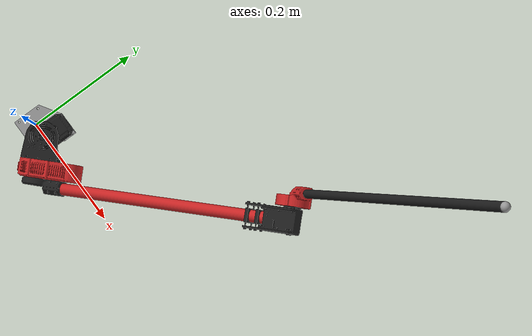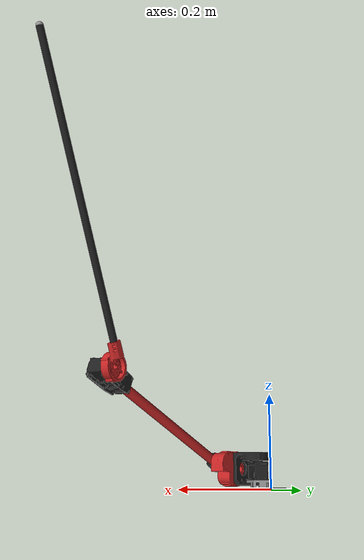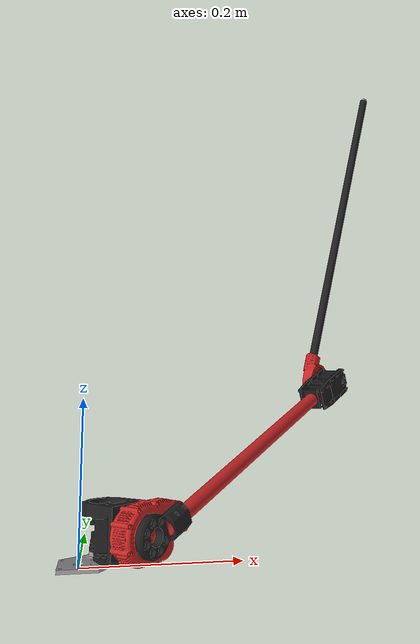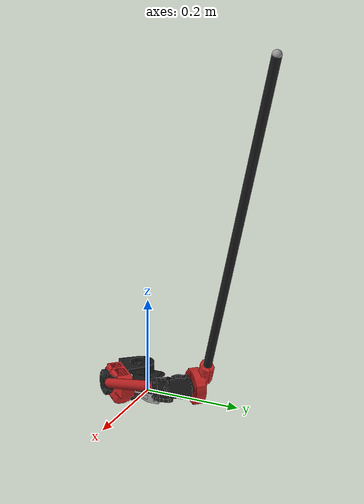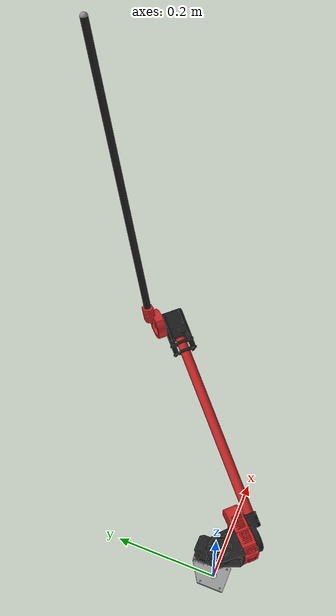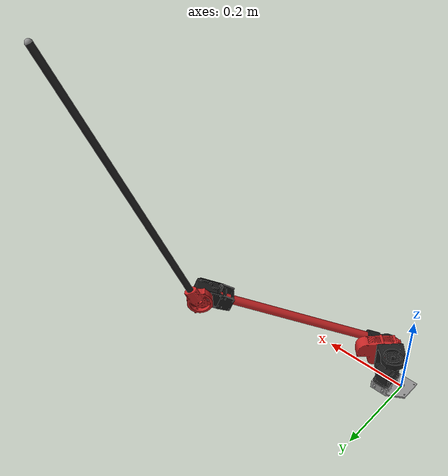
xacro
<?xml version="1.0"?>
<robot name="arm" xmlns:xacro="http://ros.org/wiki/xacro">

    <!-- Import all Gazebo-customization elements, including Gazebo colors -->
    <xacro:include filename="$(find mav_arm_force_controlled)/src/arm_gazebo_materials.gazebo" />

    <!-- Import Rviz colors -->
    <xacro:include filename="$(find mav_arm_force_controlled)/src/arm_rviz_materials.xacro" />

    <!-- General Variables-->
    <xacro:property name="pi" value="3.1415926535897931" />

    <!-- Mesh files of exact geometry-->
    <xacro:property name="mesh_file_baseplate" value="package://mav_arm_force_controlled/meshes/geometry_2.0/voliro_arm_base_dynamixel_balanced.stl" />
    <xacro:property name="mesh_file_dyamixel" value="package://mav_arm_force_controlled/meshes/geometry_2.0/voliro_arm_dynamixel.stl" />
    <xacro:property name="mesh_file_dyamixel_to_hebi" value="package://mav_arm_force_controlled/meshes/geometry_2.0/voliro_arm_dynamixel_to_hebi.stl" />
    <xacro:property name="mesh_file_hebi" value="package://mav_arm_force_controlled/meshes/geometry_2.0/voliro_arm_hebi.stl" />
    <xacro:property name="mesh_file_clamp2" value="package://mav_arm_force_controlled/meshes/geometry_2.0/voliro_arm_clamp2.stl" />
    <xacro:property name="mesh_file_tube2" value="package://mav_arm_force_controlled/meshes/geometry_2.0/voliro_arm_tube2.stl" />
    <xacro:property name="mesh_file_tube_adapter" value="package://mav_arm_force_controlled/meshes/geometry_2.0/voliro_arm_tube_adapter.stl" />
    <xacro:property name="mesh_file_actuator1" value="package://mav_arm_force_controlled/meshes/geometry_2.0/voliro_arm_dynamixel.stl" />
    <xacro:property name="mesh_file_clamp1" value="package://mav_arm_force_controlled/meshes/geometry_2.0/voliro_arm_clamp1.stl" />
    <xacro:property name="mesh_file_tube1" value="package://mav_arm_force_controlled/meshes/geometry_2.0/voliro_arm_tube1.stl" />
    <xacro:property name="mesh_file_tip" value="package://mav_arm_force_controlled/meshes/geometry_2.0/voliro_arm_tip.stl" />

    <!-- Mesh files of simplified geometry for collision checking-->
    <xacro:property name="s_mesh_file_baseplate" value="package://mav_arm_force_controlled/meshes/simplified_geometry_2.0/voliro_arm_base_dynamixel_balanced.stl" />
    <xacro:property name="s_mesh_file_dyamixel" value="package://mav_arm_force_controlled/meshes/simplified_geometry_2.0/voliro_arm_dynamixel.stl" />
    <xacro:property name="s_mesh_file_dyamixel_to_hebi" value="package://mav_arm_force_controlled/meshes/simplified_geometry_2.0/voliro_arm_dynamixel_to_hebi.stl" />
    <xacro:property name="s_mesh_file_hebi" value="package://mav_arm_force_controlled/meshes/simplified_geometry_2.0/voliro_arm_hebi.stl" />
    <xacro:property name="s_mesh_file_clamp2" value="package://mav_arm_force_controlled/meshes/simplified_geometry_2.0/voliro_arm_clamp2.stl" />
    <xacro:property name="s_mesh_file_tube2" value="package://mav_arm_force_controlled/meshes/simplified_geometry_2.0/voliro_arm_tube2.stl" />
    <xacro:property name="s_mesh_file_tube_adapter" value="package://mav_arm_force_controlled/meshes/simplified_geometry_2.0/voliro_arm_tube_adapter.stl" />
    <xacro:property name="s_mesh_file_actuator1" value="package://mav_arm_force_controlled/meshes/simplified_geometry_2.0/voliro_arm_dynamixel.stl" />
    <xacro:property name="s_mesh_file_clamp1" value="package://mav_arm_force_controlled/meshes/simplified_geometry_2.0/voliro_arm_clamp1.stl" />
    <xacro:property name="s_mesh_file_tube1" value="package://mav_arm_force_controlled/meshes/simplified_geometry_2.0/voliro_arm_tube1.stl" />
    <xacro:property name="s_mesh_file_tip" value="package://mav_arm_force_controlled/meshes/simplified_geometry_2.0/voliro_arm_tip.stl" />

    <!-- Mesh files are in mm. All mesh files are scaled by the factor 1000-->
    <xacro:property name="mesh_scale" value="0.001" />

    <!-- Unit conversion for inertia from kg*mm² to kg*m² -->
    <xacro:property name="uc_inertia" value="0.000001" />

    <!-- The mass and inertia elements are defined before the link element -->
    <xacro:property name="baseplate_mass" value="0.034534697" />

    <xacro:property name="baseplate_cog_x" value="-0.0155840153" />
    <xacro:property name="baseplate_cog_y" value="0.03245573125" />
    <xacro:property name="baseplate_cog_z" value="0.01488134446" />

    <xacro:property name="baseplate_ixx" value="${60.4589042*uc_inertia}" />
    <xacro:property name="baseplate_ixy" value="${0}" />
    <xacro:property name="baseplate_ixz" value="${0}" />
    <xacro:property name="baseplate_iyy" value="${32.25701807*uc_inertia}" />
    <xacro:property name="baseplate_iyz" value="${17.84460765*uc_inertia}" />
    <xacro:property name="baseplate_izz" value="${75.37700913*uc_inertia}" />

  <link name="world"/>

  <joint name="fixed" type="fixed">
    <parent link="world"/>
    <child link="baseplate"/>
    <origin xyz="0.03244 0.0481 0.02" rpy="${pi} 0 0" />
  </joint>

  <link name="baseplate">
    <visual>
      <geometry>
          <mesh filename="${mesh_file_baseplate}"
                scale="${mesh_scale} ${mesh_scale} ${mesh_scale}"/>
        </geometry>
      <origin rpy="0 0 0" xyz="0 0 0"/>
    </visual>
    <collision>
      <geometry>
        <mesh filename="${s_mesh_file_baseplate}"
              scale="${mesh_scale} ${mesh_scale} ${mesh_scale}"/>
        </geometry>
      <origin rpy="0 0 0" xyz="0 0 0"/>
    </collision>
    <inertial>
      <mass value="${baseplate_mass}"/>
      <inertia ixx="${baseplate_ixx}" ixy="${baseplate_ixy}" ixz="${baseplate_ixz}" iyy="${baseplate_iyy}" iyz="${baseplate_iyz}" izz="${baseplate_izz}" />
    </inertial>
  </link>

  <joint name="baseplate_to_actuator3" type="fixed">
    <parent link="baseplate"/>
    <child link="actuator3"/>
    <origin rpy="${pi} 0 ${pi}" xyz="0 ${0.0425+0.0056} -0.017"/>
  </joint>

  <xacro:property name="dynamixel_mass" value="0.135" />

  <xacro:property name="dynamixel_cog_x" value="0.000000008" />
  <xacro:property name="dynamixel_cog_y" value="0.01519089" />
  <xacro:property name="dynamixel_cog_z" value="0.000362847" />

  <xacro:property name="dynamixel_ixx" value="0.000129338" />
  <xacro:property name="dynamixel_ixy" value="0" />
  <xacro:property name="dynamixel_ixz" value="0" />
  <xacro:property name="dynamixel_iyy" value="0.000047045" />
  <xacro:property name="dynamixel_iyz" value="0.0000014" />
  <xacro:property name="dynamixel_izz" value="0.000115625" />

  <link name="actuator3">
    <visual>
      <geometry>
          <mesh filename="${mesh_file_dyamixel}"
                scale="${mesh_scale} ${mesh_scale} ${mesh_scale}"/>
        </geometry>
        <origin rpy="0 0 0" xyz="0 0 0"/>
        <material name="black"/>
    </visual>
    <collision>
      <geometry>s
        <mesh filename="${s_mesh_file_dyamixel}"
              scale="${mesh_scale} ${mesh_scale} ${mesh_scale}"/>
        </geometry>
      <origin rpy="0 0 0" xyz="0 0 0"/>
    </collision>
    <inertial>
      <mass value="${dynamixel_mass}"/>
      <inertia ixx="${dynamixel_ixy}" ixy="${dynamixel_ixy}" ixz="${dynamixel_ixz}" iyy="${dynamixel_iyy}" iyz="${dynamixel_iyz}" izz="${dynamixel_izz}" />
    </inertial>
  </link>

  <joint name="actuator_to_hebi" type="revolute">
    <axis rpy="0 0 0" xyz="0 0 1"/>
    <parent link="actuator3"/>
    <child link="dynamixel_to_hebi"/>
    <origin rpy="0 0 ${pi/2+pi/4}" xyz="0 0 ${0.0235+0.012}"/>
    <limit effort="5" lower="${-3*pi/4}" upper="${pi/4}" velocity="1" />
  </joint>

  <transmission name="actuator3_dynamixel_trans">
    <type>transmission_interface/SimpleTransmission</type>
    <joint name="actuator_to_hebi">
      <hardwareInterface>hardware_interface/EffortJointInterface</hardwareInterface>
    </joint>
    <actuator name="actuator3_dynamixel_motor">
      <hardwareInterface>hardware_interface/EffortJointInterface</hardwareInterface>
      <mechanicalReduction>1</mechanicalReduction>
    </actuator>
  </transmission>

  <xacro:property name="bearing_mass" value="0.123" />

  <xacro:property name="bearing_cog_x" value="0.008737243596" />
  <xacro:property name="bearing_cog_y" value="0.00095854858" />
  <xacro:property name="bearing_cog_z" value="-0.01965454186" />

  <xacro:property name="bearing_ixx" value="${139.5553029*uc_inertia}" />
  <xacro:property name="bearing_ixy" value="${0.414376963*uc_inertia}" />
  <xacro:property name="bearing_ixz" value="${0}" />
  <xacro:property name="bearing_iyy" value="${162.416508*uc_inertia}" />
  <xacro:property name="bearing_iyz" value="${0}" />
  <xacro:property name="bearing_izz" value="${80.76641832*uc_inertia}" />

  <link name="dynamixel_to_hebi">
    <visual>
      <geometry>
        <mesh filename="${mesh_file_dyamixel_to_hebi}"
              scale="${mesh_scale} ${mesh_scale} ${mesh_scale}"/>
      </geometry>
      <origin rpy="0 0 0" xyz="0 0 0"/>
      <material name="black"/>
    </visual>
    <collision>
      <geometry>
        <mesh filename="${s_mesh_file_dyamixel_to_hebi}"
              scale="${mesh_scale} ${mesh_scale} ${mesh_scale}"/>
        </geometry>
      <origin rpy="0 0 0" xyz="0 0 0"/>
    </collision>
    <inertial>
      <mass value="${bearing_mass}"/>
      <inertia ixx="${bearing_ixx}" ixy="${bearing_ixy}" ixz="${bearing_ixz}" iyy="${bearing_iyy}" iyz="${bearing_iyz}" izz="${bearing_izz}" />
    </inertial>
  </link>

  <joint name="bearing_to_actuator2" type="fixed">
    <parent link="dynamixel_to_hebi"/>
    <child link="actuator2"/>
    <origin rpy="${pi/2} ${0} ${pi/2}"  xyz="${0.038+0.015} ${0} ${-0.029}"/>
  </joint>

  <xacro:property name="actuator2_mass" value="0.34" />

  <xacro:property name="actuator2_cog_x" value="0.000000171" />
  <xacro:property name="actuator2_cog_y" value="0.000278026" />
  <xacro:property name="actuator2_cog_z" value="0.038471524" />

  <xacro:property name="actuator2_ixx" value="0.000186786" />
  <xacro:property name="actuator2_ixy" value="0.000041556" />
  <xacro:property name="actuator2_ixz" value="0.000000273" />
  <xacro:property name="actuator2_iyy" value="0.00043422" />
  <xacro:property name="actuator2_iyz" value="0.00000029" />
  <xacro:property name="actuator2_izz" value="0.000554524" />

  <link name="actuator2">
    <visual>
      <geometry>
        <mesh filename="${mesh_file_hebi}"
              scale="${mesh_scale} ${mesh_scale} ${mesh_scale}"/>
      </geometry>
      <origin rpy="0 0 0" xyz="0 0 0"/>
      <material name="red"/>
    </visual>
    <collision>
      <geometry>
        <mesh filename="${s_mesh_file_hebi}"
              scale="${mesh_scale} ${mesh_scale} ${mesh_scale}"/>
        </geometry>
      <origin rpy="0 0 0" xyz="0 0 0"/>
    </collision>
    <inertial>
      <mass value="${actuator2_mass}"/>
      <inertia ixx="${actuator2_ixx}" ixy="${actuator2_ixy}" ixz="${actuator2_ixz}" iyy="${actuator2_iyy}" iyz="${actuator2_iyz}" izz="${actuator2_izz}" />
    </inertial>
  </link>

  <joint name="actuator2_to_clamp2" type="continuous">
    <axis rpy="0 0 0" xyz="0 -1 0"/>
    <parent link="actuator2"/>
    <child link="clamp2"/>
    <origin rpy="${pi/2} ${0} ${-pi/4-pi/8}" xyz="${0} ${0} ${0.01605}"/>
    <limit effort="5" velocity="1" />
  </joint>

  <transmission name="actuator2_hebi_trans">
    <type>transmission_interface/SimpleTransmission</type>
    <actuator name="$actuator2_hebi_motor">
      <mechanicalReduction>1</mechanicalReduction>
    </actuator>
    <joint name="actuator2_to_clamp2">
      <hardwareInterface>hardware_interface/EffortJointInterface</hardwareInterface>
    </joint>
  </transmission>

  <xacro:property name="clamp2_mass" value="0.029" />

  <xacro:property name="clamp2_cog_x" value="0.00000000019" />
  <xacro:property name="clamp2_cog_y" value="0.008.118243555" />
  <xacro:property name="clamp2_cog_z" value="-0.01350332735" />

  <xacro:property name="clamp2_ixx" value="${21.61924342*uc_inertia}" />
  <xacro:property name="clamp2_ixy" value="${0}" />
  <xacro:property name="clamp2_ixz" value="${0.000000228*uc_inertia}" />
  <xacro:property name="clamp2_iyy" value="${23.46303475*uc_inertia}" />
  <xacro:property name="clamp2_iyz" value="${0}" />
  <xacro:property name="clamp2_izz" value="${7.990509672*uc_inertia}" />

  <link name="clamp2">
    <visual>
      <geometry>
        <mesh filename="${mesh_file_clamp2}"
              scale="${mesh_scale} ${mesh_scale} ${mesh_scale}"/>
      </geometry>
      <origin rpy="0 0 0" xyz="0 0 0"/>
      <material name="black"/>
    </visual>
    <collision>
      <geometry>
        <mesh filename="${s_mesh_file_clamp2}"
              scale="${mesh_scale} ${mesh_scale} ${mesh_scale}"/>
        </geometry>
      <origin rpy="0 0 0" xyz="0 0 0"/>
    </collision>
    <inertial>
      <mass value="${clamp2_mass}"/>
      <inertia ixx="${clamp2_ixx}" ixy="${clamp2_ixy}" ixz="${clamp2_ixz}" iyy="${clamp2_iyy}" iyz="${clamp2_iyz}" izz="${clamp2_izz}" />
    </inertial>
  </link>

  <joint name="clamp2_to_tube2" type="fixed">
    <parent link="clamp2"/>
    <child link="tube2"/>
    <origin rpy="0 ${pi} 0" xyz="${0} ${0.012} ${-0.02}"/>
  </joint>

  <xacro:property name="tube2_mass" value="0.038201767" />

  <xacro:property name="tube2_cog_x" value="0" />
  <xacro:property name="tube2_cog_y" value="0" />
  <xacro:property name="tube2_cog_z" value="0.2" />

  <xacro:property name="tube2_ixx" value="0.002039156" />
  <xacro:property name="tube2_ixy" value="0" />
  <xacro:property name="tube2_ixz" value="0" />
  <xacro:property name="tube2_iyy" value="0.002039156" />
  <xacro:property name="tube2_iyz" value="0" />
  <xacro:property name="tube2_izz" value="0.000003457" />

  <link name="tube2">
    <visual>
      <geometry>
        <mesh filename="${mesh_file_tube2}"
              scale="${mesh_scale} ${mesh_scale} ${mesh_scale}"/>
      </geometry>
      <origin rpy="0 0 0" xyz="0 0 0"/>
      <material name="red"/>
    </visual>
    <collision>
      <geometry>
        <mesh filename="${s_mesh_file_tube2}"
              scale="${mesh_scale} ${mesh_scale} ${mesh_scale}"/>
        </geometry>
      <origin rpy="0 0 0" xyz="0 0 0"/>
    </collision>
    <inertial>
      <mass value="${tube2_mass}"/>
      <inertia ixx="${tube2_ixx}" ixy="${tube2_ixy}" ixz="${tube2_ixz}" iyy="${tube2_iyy}" iyz="${tube2_iyz}" izz="${tube2_izz}" />
    </inertial>
  </link>

    <joint name="tube2_to_adapter" type="fixed">
      <parent link="tube2"/>
      <child link="tube_adapter"/>
      <origin rpy="${pi/2} 0 ${-pi}" xyz="${0} ${-0.02} ${0.4-0.0056}"/>
    </joint>

    <xacro:property name="clamp2_mass" value="0.02919169" />

    <xacro:property name="clamp2_cog_x" value="-0.000051031" />
    <xacro:property name="clamp2_cog_y" value="-5.987489264" />
    <xacro:property name="clamp2_cog_z" value="20" />

    <xacro:property name="clamp2_ixx" value="${21.61924342*uc_inertia}" />
    <xacro:property name="clamp2_ixy" value="${0}" />
    <xacro:property name="clamp2_ixz" value="${0.000000228*uc_inertia}" />
    <xacro:property name="clamp2_iyy" value="${23.46303475*uc_inertia}" />
    <xacro:property name="clamp2_iyz" value="${0}" />
    <xacro:property name="clamp2_izz" value="${7.990509672*uc_inertia}" />

    <link name="tube_adapter">
      <visual>
        <geometry>
          <mesh filename="${mesh_file_tube_adapter}"
                scale="${mesh_scale} ${mesh_scale} ${mesh_scale}"/>
        </geometry>
        <origin rpy="0 0 0" xyz="0 0 0"/>
        <material name="black"/>
      </visual>
      <collision>
        <geometry>
          <mesh filename="${s_mesh_file_tube_adapter}"
                scale="${mesh_scale} ${mesh_scale} ${mesh_scale}"/>
          </geometry>
        <origin rpy="0 0 0" xyz="0 0 0"/>
      </collision>
      <inertial>
        <mass value="${clamp2_mass}"/>
        <inertia ixx="${clamp2_ixx}" ixy="${clamp2_ixy}" ixz="${clamp2_ixz}" iyy="${clamp2_iyy}" iyz="${clamp2_iyz}" izz="${clamp2_izz}" />
      </inertial>
    </link>

      <joint name="clamp2_to_actuator1" type="fixed">
        <parent link="tube_adapter"/>
        <child link="actuator1"/>
        <origin rpy="0 ${pi} 0" xyz="${0} ${0.0425+0.0056} ${0.017+0.003}"/>
      </joint>

      <xacro:property name="actuator1_mass" value="0.135" />

      <xacro:property name="actuator1_cog_x" value="0.000000008" />
      <xacro:property name="actuator1_cog_y" value="-0.01519089" />
      <xacro:property name="actuator1_cog_z" value="0.000362847" />

      <xacro:property name="actuator1_ixx" value="0.000129338" />
      <xacro:property name="actuator1_ixy" value="0" />
      <xacro:property name="actuator1_ixz" value="0" />
      <xacro:property name="actuator1_iyy" value="0.000047045" />
      <xacro:property name="actuator1_iyz" value="0.0000014" />
      <xacro:property name="actuator1_izz" value="0.000115625" />

    <link name="actuator1">
      <visual>
        <geometry>
            <mesh filename="${mesh_file_actuator1}"
              scale="${mesh_scale} ${mesh_scale} ${mesh_scale}"/>
          </geometry>
        <origin rpy="0 0 0" xyz="0 0 0"/>
        <material name="black"/>
      </visual>
      <collision>
        <geometry>
          <mesh filename="${s_mesh_file_actuator1}"
            scale="${mesh_scale} ${mesh_scale} ${mesh_scale}"/>
          </geometry>
        <origin rpy="0 0 0" xyz="0 0 0"/>
      </collision>
      <inertial>
        <mass value="${actuator1_mass}"/>
        <inertia ixx="${actuator1_ixx}" ixy="${actuator1_ixy}" ixz="${actuator1_ixz}" iyy="${actuator1_iyy}" iyz="${actuator1_iyz}" izz="${actuator1_izz}" />
      </inertial>
    </link>

  <joint name="actuator1_to_clamp1" type="continuous">
    <axis rpy="0 0 0" xyz="0 0 1"/>
    <parent link="actuator1"/>
    <child link="clamp1"/>
    <origin rpy="${0} ${0} ${-pi/4}" xyz="${0} ${0} ${0.0235}"/>
    <limit effort="5" velocity="1" />
  </joint>

  <transmission name="actuator1_dynamixel_trans">
    <type>transmission_interface/SimpleTransmission</type>
    <joint name="actuator1_to_clamp1">
      <hardwareInterface>hardware_interface/EffortJointInterface</hardwareInterface>
    </joint>
    <actuator name="actuator1_dynamixel">
      <hardwareInterface>hardware_interface/EffortJointInterface</hardwareInterface>
      <mechanicalReduction>1</mechanicalReduction>
    </actuator>
  </transmission>

  <xacro:property name="clamp1_mass" value="0.084238767" />

  <xacro:property name="clamp1_cog_x" value="-0.000000709384" />
  <xacro:property name="clamp1_cog_y" value="0.003831382911" />
  <xacro:property name="clamp1_cog_z" value="0.007840028704" />

  <xacro:property name="clamp1_ixx" value="${35.98639204*uc_inertia}" />
  <xacro:property name="clamp1_ixy" value="${0}" />
  <xacro:property name="clamp1_ixz" value="${0}" />
  <xacro:property name="clamp1_iyy" value="${26.23411723*uc_inertia}" />
  <xacro:property name="clamp1_iyz" value="${7.078559572*uc_inertia}" />
  <xacro:property name="clamp1_izz" value="${43.83528986*uc_inertia}" />

  <link name="clamp1">
    <visual>
      <geometry>
        <mesh filename="${mesh_file_clamp1}"
          scale="${mesh_scale} ${mesh_scale} ${mesh_scale}"/>
      </geometry>
      <origin rpy="0 0 0" xyz="0 0 0"/>
      <material name="red"/>
    </visual>
    <collision>
      <geometry>
        <mesh filename="${s_mesh_file_clamp1}"
          scale="${mesh_scale} ${mesh_scale} ${mesh_scale}"/>
        </geometry>
      <origin rpy="0 0 0" xyz="0 0 0"/>
    </collision>
    <inertial>
      <mass value="${clamp1_mass}"/>
      <inertia ixx="${clamp1_ixx}" ixy="${clamp1_ixy}" ixz="${clamp1_ixz}" iyy="${clamp1_iyy}" iyz="${clamp1_iyz}" izz="${clamp1_izz}" />
    </inertial>
  </link>

  <joint name="clamp1_to_tube1" type="fixed">
    <parent link="clamp1"/>
    <child link="tube1"/>
    <origin rpy="${0} ${pi/2} ${pi/2}" xyz="${0} ${0.016} ${0.022}"/>
  </joint>

  <xacro:property name="tube1_mass" value="0.039207076" />

  <xacro:property name="tube1_cog_x" value="0" />
  <xacro:property name="tube1_cog_y" value="0" />
  <xacro:property name="tube1_cog_z" value="0.3" />

  <xacro:property name="tube1_ixx" value="${uc_inertia*4705.682308}" />
  <xacro:property name="tube1_ixy" value="0" />
  <xacro:property name="tube1_ixz" value="0" />
  <xacro:property name="tube1_iyy" value="${uc_inertia*4705.682308}" />
  <xacro:property name="tube1_iyz" value="0" />
  <xacro:property name="tube1_izz" value="${uc_inertia*1.666300743}" />

    <link name="tube1">
      <visual>
        <geometry>
          <mesh filename="${mesh_file_tube1}"
            scale="${mesh_scale} ${mesh_scale} ${mesh_scale}"/>
        </geometry>
        <origin rpy="0 0 0" xyz="0 0 0"/>
      </visual>
      <collision>
        <geometry>
          <mesh filename="${s_mesh_file_tube1}"
            scale="${mesh_scale} ${mesh_scale} ${mesh_scale}"/>
          </geometry>
        <origin rpy="0 0 0" xyz="0 0 0"/>
      </collision>
      <inertial>
        <mass value="${tube1_mass}"/>
        <inertia ixx="${tube1_ixx}" ixy="${tube1_ixy}" ixz="${tube1_ixz}" iyy="${tube1_iyy}" iyz="${tube1_iyz}" izz="${tube1_izz}" />
      </inertial>
    </link>

    <joint name="tube1_to_tip" type="fixed">
      <parent link="tube1"/>
      <child link="tip"/>
      <origin rpy="${0} ${0} ${0}" xyz="${0} ${0} ${0.6}"/>
    </joint>

    <xacro:property name="tip_mass" value="0.001540637" />

    <xacro:property name="tip_cog_x" value="0" />
    <xacro:property name="tip_cog_y" value="0" />
    <xacro:property name="tip_cog_z" value="0.000367659054" />

    <xacro:property name="tip_ixx" value="${0.028658362*uc_inertia}" />
    <xacro:property name="tip_ixy" value="${0*uc_inertia}" />
    <xacro:property name="tip_ixz" value="${0*uc_inertia}" />
    <xacro:property name="tip_iyy" value="${0.028658362*uc_inertia}" />
    <xacro:property name="tip_iyz" value="${0*uc_inertia}" />
    <xacro:property name="tip_izz" value="${0.029110752*uc_inertia}" />

    <link name="tip">
      <visual>
      <geometry>
          <mesh filename="${mesh_file_tip}"
            scale="${mesh_scale} ${mesh_scale} ${mesh_scale}"/>
        </geometry>
        <origin rpy="0 0 0" xyz="0 0 0"/>
      </visual>
      <collision>
        <geometry>
          <mesh filename="${s_mesh_file_tip}"
            scale="${mesh_scale} ${mesh_scale} ${mesh_scale}"/>
          </geometry>
        <origin rpy="0 0 0" xyz="0 0 0"/>
      </collision>
      <inertial>
        <mass value="${tip_mass}"/>
        <inertia ixx="${tip_ixx}" ixy="${tip_ixy}" ixz="${tip_ixz}" iyy="${tip_iyy}" iyz="${tip_iyz}" izz="${tip_izz}" />
      </inertial>
    </link>

</robot>
